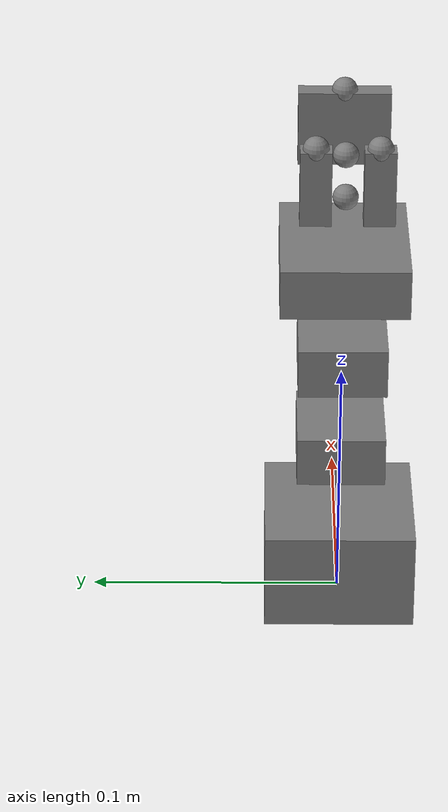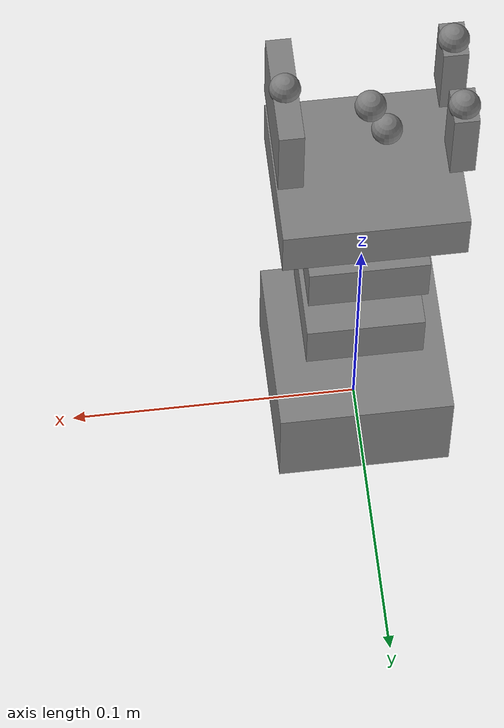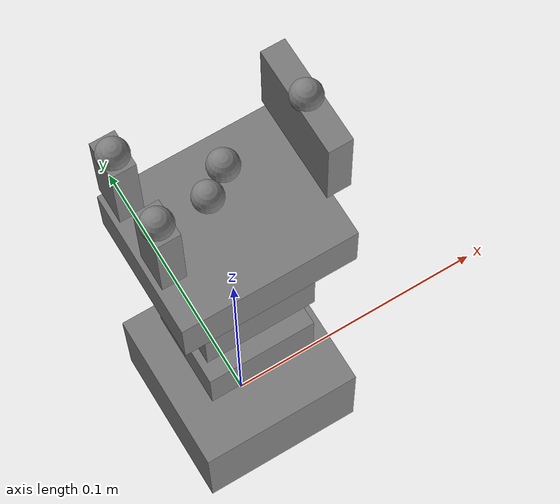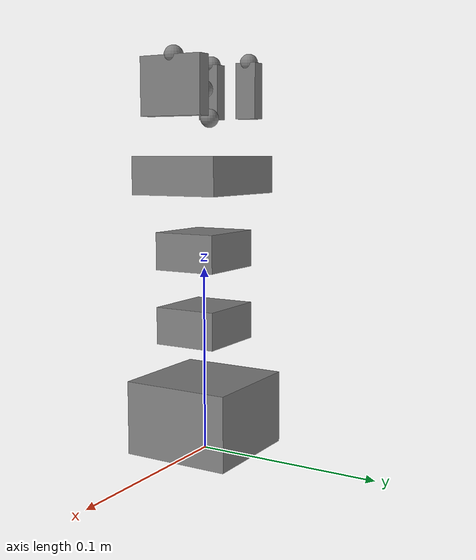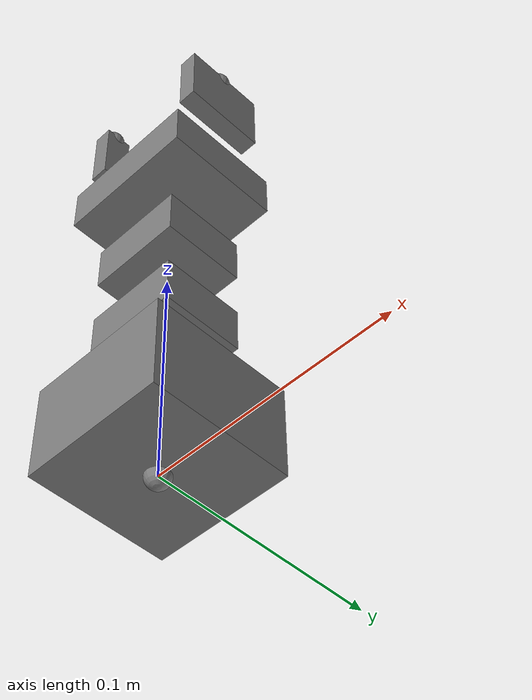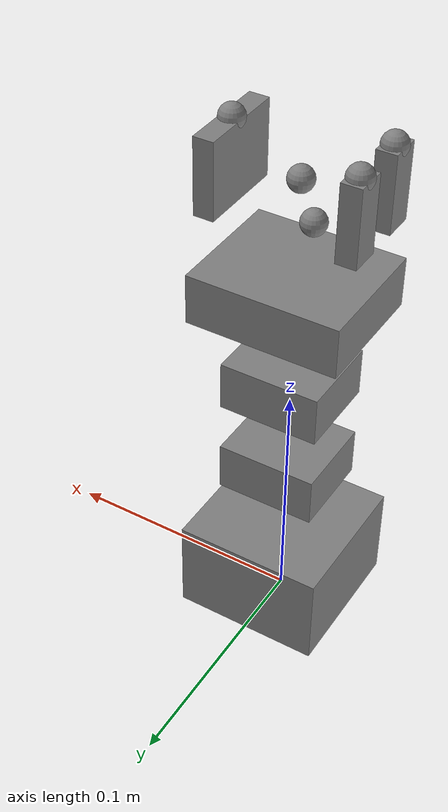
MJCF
<mujoco model="structural_body">
  <compiler angle="radian"/>

  <worldbody>
    <body name="body_0000">
      <inertial pos="0 0 0.02" quat="0.5 0.5 -0.5 0.5" mass="0.8" diaginertia="0.00048 0.000346667 0.000346667"/>
      <geom size="0.03 0.03 0.02" pos="0 0 0.02" type="box"/>
      <site name="robot_base" pos="0 0 0"/>
      <body name="body_0001" pos="0 0 0.07">
        <inertial pos="0 0 0" quat="0 0.707107 0 0.707107" mass="0.25" diaginertia="5.88542e-05 4.16667e-05 3.38542e-05"/>
        <joint name="axis_0000" pos="0 0 0" axis="1 0 0" type="slide" range="-0.05 0.05" actuatorfrcrange="-25 25" damping="0.1"/>
        <geom size="0.02 0.0175 0.01" type="box"/>
        <body name="body_0002" pos="0 0 0.04">
          <inertial pos="0 0 0" quat="0 0.707107 0 0.707107" mass="0.2" diaginertia="4.70833e-05 3.33333e-05 2.70833e-05"/>
          <joint name="axis_0001" pos="0 0 0" axis="0 1 0" type="slide" range="-0.05 0.05" actuatorfrcrange="-25 25" damping="0.1"/>
          <geom size="0.02 0.0175 0.01" type="box"/>
          <body name="body_0003" pos="0 0 0.04">
            <inertial pos="0 0 0" quat="0 0.707107 0 0.707107" mass="0.1" diaginertia="5.08333e-05 3.33333e-05 2.41667e-05"/>
            <geom size="0.03 0.025 0.01" type="box"/>
            <site name="body_0003_grasp_point" pos="0 0 0.045"/>
            <site name="body_0003_grasp_center" pos="-0.00566667 0 0.03"/>
            <site name="body_0003_wrist" pos="0 0 0"/>
            <body name="body_0004" pos="0.027 0 0.03">
              <inertial pos="0 0 0.015" quat="0.707107 0.707107 0 0" mass="0.02" diaginertia="3.66e-06 2.26667e-06 1.60667e-06"/>
              <joint name="axis_0003" pos="0 0 0" axis="-1 0 0" type="slide" range="0 0.02" actuatorfrcrange="-25 25" damping="0.1"/>
              <geom size="0.004 0.018 0.015" pos="0 0 0.015" type="box"/>
              <site name="body_0003_tip" pos="0 0 0.03"/>
              <site name="body_0003_contact_0" pos="0 0 0.03"/>
            </body>
            <body name="body_0005" pos="-0.027 -0.012 0.03">
              <inertial pos="0 0 0.015" mass="0.02" diaginertia="1.74e-06 1.60667e-06 3.46667e-07"/>
              <joint name="axis_0004" pos="0 0 0" axis="1 0 0" type="slide" range="0 0.02" actuatorfrcrange="-25 25" damping="0.1"/>
              <geom size="0.004 0.006 0.015" pos="0 0 0.015" type="box"/>
              <site name="body_0003_contact_1" pos="0 0 0.03"/>
            </body>
            <body name="body_0006" pos="-0.027 0.012 0.03">
              <inertial pos="0 0 0.015" mass="0.02" diaginertia="1.74e-06 1.60667e-06 3.46667e-07"/>
              <joint name="axis_0005" pos="0 0 0" axis="1 0 0" type="slide" range="0 0.02" actuatorfrcrange="-25 25" damping="0.1"/>
              <geom size="0.004 0.006 0.015" pos="0 0 0.015" type="box"/>
              <site name="body_0003_contact_2" pos="0 0 0.03"/>
            </body>
          </body>
        </body>
      </body>
    </body>
  </worldbody>

  <actuator>
    <general name="axis_0000_motor" joint="axis_0000" ctrllimited="true" ctrlrange="-25 25" forcelimited="true" forcerange="-25 25"/>
    <general name="axis_0001_motor" joint="axis_0001" ctrllimited="true" ctrlrange="-25 25" forcelimited="true" forcerange="-25 25"/>
    <general name="axis_0003_motor" joint="axis_0003" ctrllimited="true" ctrlrange="-25 25" forcelimited="true" forcerange="-25 25"/>
    <general name="axis_0004_motor" joint="axis_0004" ctrllimited="true" ctrlrange="-25 25" forcelimited="true" forcerange="-25 25"/>
    <general name="axis_0005_motor" joint="axis_0005" ctrllimited="true" ctrlrange="-25 25" forcelimited="true" forcerange="-25 25"/>
  </actuator>
</mujoco>
